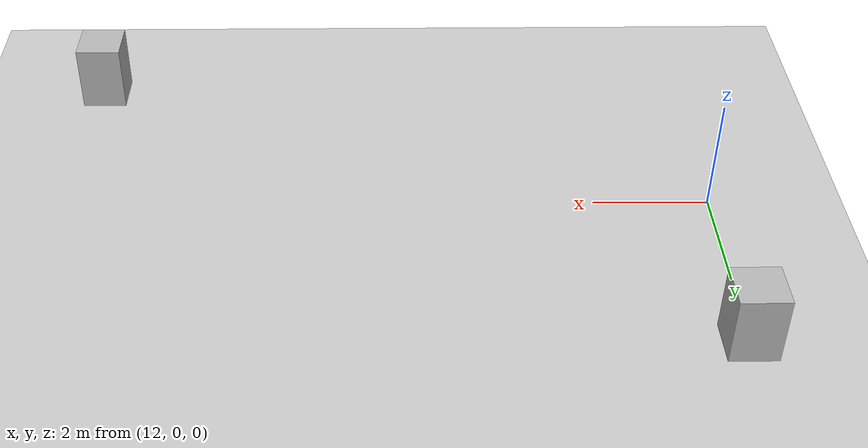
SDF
<?xml version="1.0"?>
<sdf version="1.6">
  <world name="v2-04c-r-cruise-s4506">
    <gravity>0 0 -9.81</gravity>
    <physics name="v2_deterministic" type="ode">
      <max_step_size>0.002</max_step_size>
      <real_time_update_rate>500</real_time_update_rate>
    </physics>
    <include>
      <uri>model://sun</uri>
    </include>
    <include>
      <uri>model://ground_plane</uri>
    </include>
    <model name="r-cruise-left">
      <static>true</static>
      <pose>12.036292055 3.446738588 0.600000000 0 0 0.004041712</pose>
      <link name="link">
        <collision name="collision">
          <geometry>
            <box>
              <size>0.800000 0.800000 1.200000</size>
            </box>
          </geometry>
        </collision>
        <visual name="visual">
          <geometry>
            <box>
              <size>0.800000 0.800000 1.200000</size>
            </box>
          </geometry>
        </visual>
      </link>
    </model>
    <model name="r-cruise-right">
      <static>true</static>
      <pose>22.965132316 -3.468585765 0.600000000 0 0 -0.002833612</pose>
      <link name="link">
        <collision name="collision">
          <geometry>
            <box>
              <size>0.800000 0.800000 1.200000</size>
            </box>
          </geometry>
        </collision>
        <visual name="visual">
          <geometry>
            <box>
              <size>0.800000 0.800000 1.200000</size>
            </box>
          </geometry>
        </visual>
      </link>
    </model>
  </world>
</sdf>
